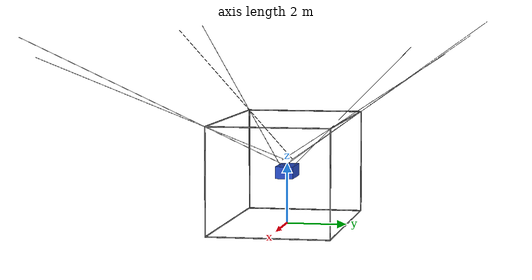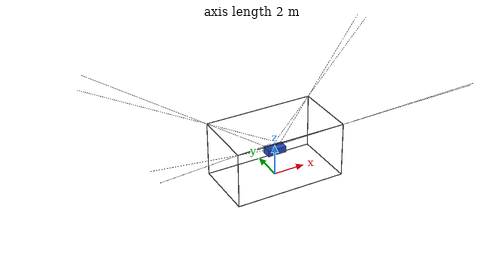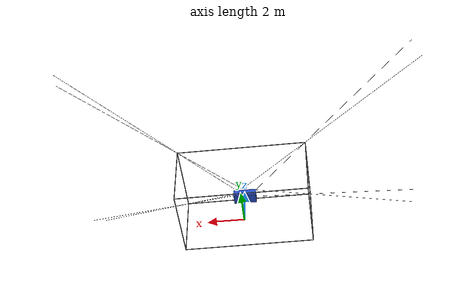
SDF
<?xml version="1.0"?>
<sdf version="1.4">
  <model name="/home/user/catkin_ws/src/cdpr3/sdf/caroca">
    <!--Definition of the robot frame-->
    <link name="frame">
      <pose>0 0 0 0 0 0</pose>
      <inertial>
        <inertia>
          <ixx>50000.0</ixx>
          <ixy>0</ixy>
          <ixz>0</ixz>
          <iyy>50000.0</iyy>
          <iyz>0</iyz>
          <izz>50000.0</izz>
        </inertia>
        <mass>100000</mass>
      </inertial>
      <visual name="visual1">
        <geometry>
          <cylinder>
            <radius>0.02</radius>
            <length>3.5</length>
          </cylinder>
        </geometry>
        <pose>-3.500000 -2.000000 1.750000 0.000000 0.000000 0.000000</pose>
        <material>
          <script>
            <uri>file://media/materials/scripts/kitchen.material</uri>
            <name>Gazebo/Grey</name>
          </script>
        </material>
      </visual>
      <collision name="collision1">
        <geometry>
          <cylinder>
            <radius>0.02</radius>
          </cylinder>
        </geometry>
        <pose>-3.500000 -2.000000 1.750000 0.000000 0.000000 0.000000</pose>
      </collision>
      <visual name="visual2">
        <geometry>
          <cylinder>
            <radius>0.02</radius>
            <length>4.0</length>
          </cylinder>
        </geometry>
        <pose>-3.500000 0.000000 0.000000 1.570796 0.000000 0.000000</pose>
        <material>
          <script>
            <uri>file://media/materials/scripts/kitchen.material</uri>
            <name>Gazebo/Grey</name>
          </script>
        </material>
      </visual>
      <collision name="collision2">
        <geometry>
          <cylinder>
            <radius>0.02</radius>
          </cylinder>
        </geometry>
        <pose>-3.500000 0.000000 0.000000 1.570796 0.000000 0.000000</pose>
      </collision>
      <visual name="visual3">
        <geometry>
          <cylinder>
            <radius>0.02</radius>
            <length>7.0</length>
          </cylinder>
        </geometry>
        <pose>0.000000 -2.000000 0.000000 0.000000 1.570796 0.000000</pose>
        <material>
          <script>
            <uri>file://media/materials/scripts/kitchen.material</uri>
            <name>Gazebo/Grey</name>
          </script>
        </material>
      </visual>
      <collision name="collision3">
        <geometry>
          <cylinder>
            <radius>0.02</radius>
          </cylinder>
        </geometry>
        <pose>0.000000 -2.000000 0.000000 0.000000 1.570796 0.000000</pose>
      </collision>
      <visual name="visual4">
        <geometry>
          <cylinder>
            <radius>0.02</radius>
            <length>4.0</length>
          </cylinder>
        </geometry>
        <pose>-3.500000 0.000000 3.500000 1.570796 0.000000 0.000000</pose>
        <material>
          <script>
            <uri>file://media/materials/scripts/kitchen.material</uri>
            <name>Gazebo/Grey</name>
          </script>
        </material>
      </visual>
      <collision name="collision4">
        <geometry>
          <cylinder>
            <radius>0.02</radius>
          </cylinder>
        </geometry>
        <pose>-3.500000 0.000000 3.500000 1.570796 0.000000 0.000000</pose>
      </collision>
      <visual name="visual5">
        <geometry>
          <cylinder>
            <radius>0.02</radius>
            <length>7.0</length>
          </cylinder>
        </geometry>
        <pose>0.000000 -2.000000 3.500000 0.000000 1.570796 0.000000</pose>
        <material>
          <script>
            <uri>file://media/materials/scripts/kitchen.material</uri>
            <name>Gazebo/Grey</name>
          </script>
        </material>
      </visual>
      <collision name="collision5">
        <geometry>
          <cylinder>
            <radius>0.02</radius>
          </cylinder>
        </geometry>
        <pose>0.000000 -2.000000 3.500000 0.000000 1.570796 0.000000</pose>
      </collision>
      <visual name="visual6">
        <geometry>
          <cylinder>
            <radius>0.02</radius>
            <length>3.5</length>
          </cylinder>
        </geometry>
        <pose>-3.500000 2.000000 1.750000 0.000000 0.000000 0.000000</pose>
        <material>
          <script>
            <uri>file://media/materials/scripts/kitchen.material</uri>
            <name>Gazebo/Grey</name>
          </script>
        </material>
      </visual>
      <collision name="collision6">
        <geometry>
          <cylinder>
            <radius>0.02</radius>
          </cylinder>
        </geometry>
        <pose>-3.500000 2.000000 1.750000 0.000000 0.000000 0.000000</pose>
      </collision>
      <visual name="visual7">
        <geometry>
          <cylinder>
            <radius>0.02</radius>
            <length>7.0</length>
          </cylinder>
        </geometry>
        <pose>0.000000 2.000000 0.000000 0.000000 1.570796 0.000000</pose>
        <material>
          <script>
            <uri>file://media/materials/scripts/kitchen.material</uri>
            <name>Gazebo/Grey</name>
          </script>
        </material>
      </visual>
      <collision name="collision7">
        <geometry>
          <cylinder>
            <radius>0.02</radius>
          </cylinder>
        </geometry>
        <pose>0.000000 2.000000 0.000000 0.000000 1.570796 0.000000</pose>
      </collision>
      <visual name="visual8">
        <geometry>
          <cylinder>
            <radius>0.02</radius>
            <length>7.0</length>
          </cylinder>
        </geometry>
        <pose>0.000000 2.000000 3.500000 0.000000 1.570796 0.000000</pose>
        <material>
          <script>
            <uri>file://media/materials/scripts/kitchen.material</uri>
            <name>Gazebo/Grey</name>
          </script>
        </material>
      </visual>
      <collision name="collision8">
        <geometry>
          <cylinder>
            <radius>0.02</radius>
          </cylinder>
        </geometry>
        <pose>0.000000 2.000000 3.500000 0.000000 1.570796 0.000000</pose>
      </collision>
      <visual name="visual9">
        <geometry>
          <cylinder>
            <radius>0.02</radius>
            <length>3.5</length>
          </cylinder>
        </geometry>
        <pose>3.500000 -2.000000 1.750000 0.000000 0.000000 0.000000</pose>
        <material>
          <script>
            <uri>file://media/materials/scripts/kitchen.material</uri>
            <name>Gazebo/Grey</name>
          </script>
        </material>
      </visual>
      <collision name="collision9">
        <geometry>
          <cylinder>
            <radius>0.02</radius>
          </cylinder>
        </geometry>
        <pose>3.500000 -2.000000 1.750000 0.000000 0.000000 0.000000</pose>
      </collision>
      <visual name="visual10">
        <geometry>
          <cylinder>
            <radius>0.02</radius>
            <length>4.0</length>
          </cylinder>
        </geometry>
        <pose>3.500000 0.000000 0.000000 1.570796 0.000000 0.000000</pose>
        <material>
          <script>
            <uri>file://media/materials/scripts/kitchen.material</uri>
            <name>Gazebo/Grey</name>
          </script>
        </material>
      </visual>
      <collision name="collision10">
        <geometry>
          <cylinder>
            <radius>0.02</radius>
          </cylinder>
        </geometry>
        <pose>3.500000 0.000000 0.000000 1.570796 0.000000 0.000000</pose>
      </collision>
      <visual name="visual11">
        <geometry>
          <cylinder>
            <radius>0.02</radius>
            <length>4.0</length>
          </cylinder>
        </geometry>
        <pose>3.500000 0.000000 3.500000 1.570796 0.000000 0.000000</pose>
        <material>
          <script>
            <uri>file://media/materials/scripts/kitchen.material</uri>
            <name>Gazebo/Grey</name>
          </script>
        </material>
      </visual>
      <collision name="collision11">
        <geometry>
          <cylinder>
            <radius>0.02</radius>
          </cylinder>
        </geometry>
        <pose>3.500000 0.000000 3.500000 1.570796 0.000000 0.000000</pose>
      </collision>
      <visual name="visual12">
        <geometry>
          <cylinder>
            <radius>0.02</radius>
            <length>3.5</length>
          </cylinder>
        </geometry>
        <pose>3.500000 2.000000 1.750000 0.000000 0.000000 0.000000</pose>
        <material>
          <script>
            <uri>file://media/materials/scripts/kitchen.material</uri>
            <name>Gazebo/Grey</name>
          </script>
        </material>
      </visual>
      <collision name="collision12">
        <geometry>
          <cylinder>
            <radius>0.02</radius>
          </cylinder>
        </geometry>
        <pose>3.500000 2.000000 1.750000 0.000000 0.000000 0.000000</pose>
      </collision>
    </link>
    <!--Definition of the robot cables-->
    <!--Definition of the robot platform-->
    <link name="platform">
      <pose>0.000000 0.000000 1.7500000 0.000000 0.000000 0.000000</pose>
      <visual name="visualplatform">
        <geometry>
          <box>
            <size>1.2 0.6 0.4</size>
          </box>
        </geometry>
        <material>
          <script>
            <uri>file://media/materials/scripts/kitchen.material</uri>
            <name>Gazebo/Blue</name>
          </script>
        </material>
      </visual>
      <collision name="collisionplatform">
        <geometry>
          <box>
            <size>1.2 0.6 0.4</size>
          </box>
        </geometry>
      </collision>
      <inertial>
        <inertia>
          <ixx>50.0</ixx>
          <ixy>0</ixy>
          <ixz>0</ixz>
          <iyy>50.0</iyy>
          <iyz>0</iyz>
          <izz>50.0</izz>
        </inertia>
        <mass>100</mass>
      </inertial>
    </link>
    <link name="cable0">
      <pose>-4.945385 2.722693 4.037136 2.209959 1.013652 1.669938</pose>
      <visual name="visual">
        <geometry>
          <cylinder>
            <radius>0.005</radius>
            <length>12.124355653</length>
          </cylinder>
        </geometry>
        <material>
          <script>
            <uri>file://media/materials/scripts/kitchen.material</uri>
            <name>Gazebo/Black</name>
          </script>
        </material>
      </visual>
      <inertial>
        <inertia>
          <ixx>0.005</ixx>
          <ixy>0</ixy>
          <ixz>0</ixz>
          <iyy>0.005</iyy>
          <iyz>0</iyz>
          <izz>0.005</izz>
        </inertia>
        <mass>0.01</mass>
      </inertial>
    </link>
    <link name="virt_X0">
      <inertial>
        <inertia>
          <ixx>0.005</ixx>
          <ixy>0</ixy>
          <ixz>0</ixz>
          <iyy>0.005</iyy>
          <iyz>0</iyz>
          <izz>0.005</izz>
        </inertia>
        <mass>0.01</mass>
      </inertial>
      <pose>-3.500000 2.000000 3.500000 2.209959 1.013652 1.669938</pose>
    </link>
    <joint name="rev_X0" type="revolute">
      <pose>0 0 0 2.209959 1.013652 1.669938</pose>
      <parent>frame</parent>
      <child>virt_X0</child>
      <axis>
        <xyz>-0.052337 0.526168 -0.848768</xyz>
        <limit>
          <effort>6500</effort>
          <velocity>100</velocity>
        </limit>
        <dynamics>
          <damping>1</damping>
        </dynamics>
      </axis>
    </joint>
    <link name="virt_Y0">
      <inertial>
        <inertia>
          <ixx>0.5</ixx>
          <ixy>0</ixy>
          <ixz>0</ixz>
          <iyy>0.5</iyy>
          <iyz>0</iyz>
          <izz>0.5</izz>
        </inertia>
        <mass>1</mass>
      </inertial>
      <pose>-3.500000 2.000000 3.500000 2.209959 1.013652 1.669938</pose>
    </link>
    <joint name="rev_Y0" type="revolute">
      <pose>0 0 0 2.209959 1.013652 1.669938</pose>
      <parent>virt_Y0</parent>
      <child>virt_X0</child>
      <axis>
        <xyz>0.526168 0.736916 0.424384</xyz>
        <limit>
          <effort>6500</effort>
          <velocity>100</velocity>
        </limit>
        <dynamics>
          <damping>1</damping>
        </dynamics>
      </axis>
    </joint>
    <joint name="linear0" type="prismatic">
      <pose>0 0 2.368157 2.209959 1.013652 1.669938</pose>
      <parent>virt_Y0</parent>
      <child>cable0</child>
      <axis>
        <xyz>-0.848768 0.424384 0.315421</xyz>
        <limit>
          <lower>-50</lower>
          <upper>50</upper>
          <effort>6500</effort>
          <velocity>100</velocity>
        </limit>
        <dynamics>
          <damping>1</damping>
        </dynamics>
      </axis>
    </joint>
    <link name="virt_Xpf0">
      <inertial>
        <inertia>
          <ixx>0.5</ixx>
          <ixy>0</ixy>
          <ixz>0</ixz>
          <iyy>0.5</iyy>
          <iyz>0</iyz>
          <izz>0.5</izz>
        </inertia>
        <mass>1</mass>
      </inertial>
      <pose>0.200000 0.150000 2.125000 2.209959 1.013652 1.669938</pose>
    </link>
    <joint name="rev_Xpf0" type="revolute">
      <pose>0 0 0 2.209959 1.013652 1.669938</pose>
      <parent>platform</parent>
      <child>virt_Ypf0</child>
      <axis>
        <xyz>1 0 0</xyz>
        <limit>
          <effort>6500</effort>
          <velocity>100</velocity>
        </limit>
        <dynamics>
          <damping>1</damping>
        </dynamics>
      </axis>
    </joint>
    <link name="virt_Ypf0">
      <inertial>
        <inertia>
          <ixx>0.5</ixx>
          <ixy>0</ixy>
          <ixz>0</ixz>
          <iyy>0.5</iyy>
          <iyz>0</iyz>
          <izz>0.5</izz>
        </inertia>
        <mass>1</mass>
      </inertial>
      <pose>0.200000 0.150000 2.125000 2.209959 1.013652 1.669938</pose>
    </link>
    <joint name="rev_Ypf0" type="revolute">
      <pose>0 0 0 2.209959 1.013652 1.669938</pose>
      <parent>virt_Xpf0</parent>
      <child>virt_Ypf0</child>
      <axis>
        <xyz>0 1 0</xyz>
        <limit>
          <effort>6500</effort>
          <velocity>100</velocity>
        </limit>
        <dynamics>
          <damping>1</damping>
        </dynamics>
      </axis>
    </joint>
    <joint name="rev_Zpf0" type="revolute">
      <pose>0 0 0 2.209959 1.013652 1.669938</pose>
      <child>virt_Ypf0</child>
      <parent>cable0</parent>
      <axis>
        <xyz>0 0 1</xyz>
        <limit>
          <effort>6500</effort>
          <velocity>100</velocity>
        </limit>
        <dynamics>
          <damping>1</damping>
        </dynamics>
      </axis>
    </joint>
    <plugin filename="libcdpr3.so" name="freefloating_gazebo_control"/>
    <link name="cable1">
      <pose>4.846717 2.673358 4.091600 2.291567 -0.983591 -1.738566</pose>
      <visual name="visual">
        <geometry>
          <cylinder>
            <radius>0.005</radius>
            <length>12.124355653</length>
          </cylinder>
        </geometry>
        <material>
          <script>
            <uri>file://media/materials/scripts/kitchen.material</uri>
            <name>Gazebo/Black</name>
          </script>
        </material>
      </visual>
      <inertial>
        <inertia>
          <ixx>0.005</ixx>
          <ixy>0</ixy>
          <ixz>0</ixz>
          <iyy>0.005</iyy>
          <iyz>0</iyz>
          <izz>0.005</izz>
        </inertia>
        <mass>0.01</mass>
      </inertial>
    </link>
    <link name="virt_X1">
      <inertial>
        <inertia>
          <ixx>0.005</ixx>
          <ixy>0</ixy>
          <ixz>0</ixz>
          <iyy>0.005</iyy>
          <iyz>0</iyz>
          <izz>0.005</izz>
        </inertia>
        <mass>0.01</mass>
      </inertial>
      <pose>3.500000 2.000000 3.500100 2.291567 -0.983591 -1.738566</pose>
    </link>
    <joint name="rev_X1" type="revolute">
      <pose>0 0 0 2.291567 -0.983591 -1.738566</pose>
      <parent>frame</parent>
      <child>virt_X1</child>
      <axis>
        <xyz>-0.092515 -0.546258 0.832492</xyz>
        <limit>
          <effort>6500</effort>
          <velocity>100</velocity>
        </limit>
        <dynamics>
          <damping>1</damping>
        </dynamics>
      </axis>
    </joint>
    <link name="virt_Y1">
      <inertial>
        <inertia>
          <ixx>0.5</ixx>
          <ixy>0</ixy>
          <ixz>0</ixz>
          <iyy>0.5</iyy>
          <iyz>0</iyz>
          <izz>0.5</izz>
        </inertia>
        <mass>1</mass>
      </inertial>
      <pose>3.500000 2.000000 3.500100 2.291567 -0.983591 -1.738566</pose>
    </link>
    <joint name="rev_Y1" type="revolute">
      <pose>0 0 0 2.291567 -0.983591 -1.738566</pose>
      <parent>virt_Y1</parent>
      <child>virt_X1</child>
      <axis>
        <xyz>-0.546258 0.726871 0.416246</xyz>
        <limit>
          <effort>6500</effort>
          <velocity>100</velocity>
        </limit>
        <dynamics>
          <damping>1</damping>
        </dynamics>
      </axis>
    </joint>
    <joint name="linear1" type="prismatic">
      <pose>0 0 2.206496 2.291567 -0.983591 -1.738566</pose>
      <parent>virt_Y1</parent>
      <child>cable1</child>
      <axis>
        <xyz>0.832492 0.416246 0.365644</xyz>
        <limit>
          <lower>-50</lower>
          <upper>50</upper>
          <effort>6500</effort>
          <velocity>100</velocity>
        </limit>
        <dynamics>
          <damping>1</damping>
        </dynamics>
      </axis>
    </joint>
    <link name="virt_Xpf1">
      <inertial>
        <inertia>
          <ixx>0.5</ixx>
          <ixy>0</ixy>
          <ixz>0</ixz>
          <iyy>0.5</iyy>
          <iyz>0</iyz>
          <izz>0.5</izz>
        </inertia>
        <mass>1</mass>
      </inertial>
      <pose>-0.200000 0.150000 1.875000 2.291567 -0.983591 -1.738566</pose>
    </link>
    <joint name="rev_Xpf1" type="revolute">
      <pose>0 0 0 2.291567 -0.983591 -1.738566</pose>
      <parent>platform</parent>
      <child>virt_Ypf1</child>
      <axis>
        <xyz>1 0 0</xyz>
        <limit>
          <effort>6500</effort>
          <velocity>100</velocity>
        </limit>
        <dynamics>
          <damping>1</damping>
        </dynamics>
      </axis>
    </joint>
    <link name="virt_Ypf1">
      <inertial>
        <inertia>
          <ixx>0.5</ixx>
          <ixy>0</ixy>
          <ixz>0</ixz>
          <iyy>0.5</iyy>
          <iyz>0</iyz>
          <izz>0.5</izz>
        </inertia>
        <mass>1</mass>
      </inertial>
      <pose>-0.200000 0.150000 1.875000 2.291567 -0.983591 -1.738566</pose>
    </link>
    <joint name="rev_Ypf1" type="revolute">
      <pose>0 0 0 2.291567 -0.983591 -1.738566</pose>
      <parent>virt_Xpf1</parent>
      <child>virt_Ypf1</child>
      <axis>
        <xyz>0 1 0</xyz>
        <limit>
          <effort>6500</effort>
          <velocity>100</velocity>
        </limit>
        <dynamics>
          <damping>1</damping>
        </dynamics>
      </axis>
    </joint>
    <joint name="rev_Zpf1" type="revolute">
      <pose>0 0 0 2.291567 -0.983591 -1.738566</pose>
      <child>virt_Ypf1</child>
      <parent>cable1</parent>
      <axis>
        <xyz>0 0 1</xyz>
        <limit>
          <effort>6500</effort>
          <velocity>100</velocity>
        </limit>
        <dynamics>
          <damping>1</damping>
        </dynamics>
      </axis>
    </joint>
    <plugin filename="libcdpr3.so" name="freefloating_gazebo_control"/>
    <link name="cable2">
      <pose>-4.895339 2.909084 4.187099 2.218008 0.885972 1.522972</pose>
      <visual name="visual">
        <geometry>
          <cylinder>
            <radius>0.005</radius>
            <length>12.124355653</length>
          </cylinder>
        </geometry>
        <material>
          <script>
            <uri>file://media/materials/scripts/kitchen.material</uri>
            <name>Gazebo/Black</name>
          </script>
        </material>
      </visual>
      <inertial>
        <inertia>
          <ixx>0.005</ixx>
          <ixy>0</ixy>
          <ixz>0</ixz>
          <iyy>0.005</iyy>
          <iyz>0</iyz>
          <izz>0.005</izz>
        </inertia>
        <mass>0.01</mass>
      </inertial>
    </link>
    <link name="virt_X2">
      <inertial>
        <inertia>
          <ixx>0.005</ixx>
          <ixy>0</ixy>
          <ixz>0</ixz>
          <iyy>0.005</iyy>
          <iyz>0</iyz>
          <izz>0.005</izz>
        </inertia>
        <mass>0.01</mass>
      </inertial>
      <pose>-3.500000 2.000000 3.500000 2.218008 0.885972 1.522972</pose>
    </link>
    <joint name="rev_X2" type="revolute">
      <pose>0 0 0 2.218008 0.885972 1.522972</pose>
      <parent>frame</parent>
      <child>virt_X2</child>
      <axis>
        <xyz>0.030239 0.631814 -0.774530</xyz>
        <limit>
          <effort>6500</effort>
          <velocity>100</velocity>
        </limit>
        <dynamics>
          <damping>1</damping>
        </dynamics>
      </axis>
    </joint>
    <link name="virt_Y2">
      <inertial>
        <inertia>
          <ixx>0.5</ixx>
          <ixy>0</ixy>
          <ixz>0</ixz>
          <iyy>0.5</iyy>
          <iyz>0</iyz>
          <izz>0.5</izz>
        </inertia>
        <mass>1</mass>
      </inertial>
      <pose>-3.500000 2.000000 3.500000 2.218008 0.885972 1.522972</pose>
    </link>
    <joint name="rev_Y2" type="revolute">
      <pose>0 0 0 2.218008 0.885972 1.522972</pose>
      <parent>virt_Y2</parent>
      <child>virt_X2</child>
      <axis>
        <xyz>0.631814 0.588364 0.504618</xyz>
        <limit>
          <effort>6500</effort>
          <velocity>100</velocity>
        </limit>
        <dynamics>
          <damping>1</damping>
        </dynamics>
      </axis>
    </joint>
    <joint name="linear2" type="prismatic">
      <pose>0 0 2.563270 2.218008 0.885972 1.522972</pose>
      <parent>virt_Y2</parent>
      <child>cable2</child>
      <axis>
        <xyz>-0.774530 0.504618 0.381397</xyz>
        <limit>
          <lower>-50</lower>
          <upper>50</upper>
          <effort>6500</effort>
          <velocity>100</velocity>
        </limit>
        <dynamics>
          <damping>1</damping>
        </dynamics>
      </axis>
    </joint>
    <link name="virt_Xpf2">
      <inertial>
        <inertia>
          <ixx>0.5</ixx>
          <ixy>0</ixy>
          <ixz>0</ixz>
          <iyy>0.5</iyy>
          <iyz>0</iyz>
          <izz>0.5</izz>
        </inertia>
        <mass>1</mass>
      </inertial>
      <pose>-0.200000 -0.150000 1.875000 2.218008 0.885972 1.522972</pose>
    </link>
    <joint name="rev_Xpf2" type="revolute">
      <pose>0 0 0 2.218008 0.885972 1.522972</pose>
      <parent>platform</parent>
      <child>virt_Ypf2</child>
      <axis>
        <xyz>1 0 0</xyz>
        <limit>
          <effort>6500</effort>
          <velocity>100</velocity>
        </limit>
        <dynamics>
          <damping>1</damping>
        </dynamics>
      </axis>
    </joint>
    <link name="virt_Ypf2">
      <inertial>
        <inertia>
          <ixx>0.5</ixx>
          <ixy>0</ixy>
          <ixz>0</ixz>
          <iyy>0.5</iyy>
          <iyz>0</iyz>
          <izz>0.5</izz>
        </inertia>
        <mass>1</mass>
      </inertial>
      <pose>-0.200000 -0.150000 1.875000 2.218008 0.885972 1.522972</pose>
    </link>
    <joint name="rev_Ypf2" type="revolute">
      <pose>0 0 0 2.218008 0.885972 1.522972</pose>
      <parent>virt_Xpf2</parent>
      <child>virt_Ypf2</child>
      <axis>
        <xyz>0 1 0</xyz>
        <limit>
          <effort>6500</effort>
          <velocity>100</velocity>
        </limit>
        <dynamics>
          <damping>1</damping>
        </dynamics>
      </axis>
    </joint>
    <joint name="rev_Zpf2" type="revolute">
      <pose>0 0 0 2.218008 0.885972 1.522972</pose>
      <child>virt_Ypf2</child>
      <parent>cable2</parent>
      <axis>
        <xyz>0 0 1</xyz>
        <limit>
          <effort>6500</effort>
          <velocity>100</velocity>
        </limit>
        <dynamics>
          <damping>1</damping>
        </dynamics>
      </axis>
    </joint>
    <plugin filename="libcdpr3.so" name="freefloating_gazebo_control"/>
    <link name="cable3">
      <pose>4.995408 2.974281 4.123232 2.139812 -0.912503 -1.461739</pose>
      <visual name="visual">
        <geometry>
          <cylinder>
            <radius>0.005</radius>
            <length>12.124355653</length>
          </cylinder>
        </geometry>
        <material>
          <script>
            <uri>file://media/materials/scripts/kitchen.material</uri>
            <name>Gazebo/Black</name>
          </script>
        </material>
      </visual>
      <inertial>
        <inertia>
          <ixx>0.005</ixx>
          <ixy>0</ixy>
          <ixz>0</ixz>
          <iyy>0.005</iyy>
          <iyz>0</iyz>
          <izz>0.005</izz>
        </inertia>
        <mass>0.01</mass>
      </inertial>
    </link>
    <link name="virt_X3">
      <inertial>
        <inertia>
          <ixx>0.005</ixx>
          <ixy>0</ixy>
          <ixz>0</ixz>
          <iyy>0.005</iyy>
          <iyz>0</iyz>
          <izz>0.005</izz>
        </inertia>
        <mass>0.01</mass>
      </inertial>
      <pose>3.500000 2.000000 3.500100 2.139812 -0.912503 -1.461739</pose>
    </link>
    <joint name="rev_X3" type="revolute">
      <pose>0 0 0 2.139812 -0.912503 -1.461739</pose>
      <parent>frame</parent>
      <child>virt_X3</child>
      <axis>
        <xyz>0.066586 -0.608134 0.791037</xyz>
        <limit>
          <effort>6500</effort>
          <velocity>100</velocity>
        </limit>
        <dynamics>
          <damping>1</damping>
        </dynamics>
      </axis>
    </joint>
    <link name="virt_Y3">
      <inertial>
        <inertia>
          <ixx>0.5</ixx>
          <ixy>0</ixy>
          <ixz>0</ixz>
          <iyy>0.5</iyy>
          <iyz>0</iyz>
          <izz>0.5</izz>
        </inertia>
        <mass>1</mass>
      </inertial>
      <pose>3.500000 2.000000 3.500100 2.139812 -0.912503 -1.461739</pose>
    </link>
    <joint name="rev_Y3" type="revolute">
      <pose>0 0 0 2.139812 -0.912503 -1.461739</pose>
      <parent>virt_Y3</parent>
      <child>virt_X3</child>
      <axis>
        <xyz>-0.608134 0.603792 0.515373</xyz>
        <limit>
          <effort>6500</effort>
          <velocity>100</velocity>
        </limit>
        <dynamics>
          <damping>1</damping>
        </dynamics>
      </axis>
    </joint>
    <joint name="linear3" type="prismatic">
      <pose>0 0 2.747100 2.139812 -0.912503 -1.461739</pose>
      <parent>virt_Y3</parent>
      <child>cable3</child>
      <axis>
        <xyz>0.791037 0.515373 0.329623</xyz>
        <limit>
          <lower>-50</lower>
          <upper>50</upper>
          <effort>6500</effort>
          <velocity>100</velocity>
        </limit>
        <dynamics>
          <damping>1</damping>
        </dynamics>
      </axis>
    </joint>
    <link name="virt_Xpf3">
      <inertial>
        <inertia>
          <ixx>0.5</ixx>
          <ixy>0</ixy>
          <ixz>0</ixz>
          <iyy>0.5</iyy>
          <iyz>0</iyz>
          <izz>0.5</izz>
        </inertia>
        <mass>1</mass>
      </inertial>
      <pose>0.200000 -0.150000 2.125000 2.139812 -0.912503 -1.461739</pose>
    </link>
    <joint name="rev_Xpf3" type="revolute">
      <pose>0 0 0 2.139812 -0.912503 -1.461739</pose>
      <parent>platform</parent>
      <child>virt_Ypf3</child>
      <axis>
        <xyz>1 0 0</xyz>
        <limit>
          <effort>6500</effort>
          <velocity>100</velocity>
        </limit>
        <dynamics>
          <damping>1</damping>
        </dynamics>
      </axis>
    </joint>
    <link name="virt_Ypf3">
      <inertial>
        <inertia>
          <ixx>0.5</ixx>
          <ixy>0</ixy>
          <ixz>0</ixz>
          <iyy>0.5</iyy>
          <iyz>0</iyz>
          <izz>0.5</izz>
        </inertia>
        <mass>1</mass>
      </inertial>
      <pose>0.200000 -0.150000 2.125000 2.139812 -0.912503 -1.461739</pose>
    </link>
    <joint name="rev_Ypf3" type="revolute">
      <pose>0 0 0 2.139812 -0.912503 -1.461739</pose>
      <parent>virt_Xpf3</parent>
      <child>virt_Ypf3</child>
      <axis>
        <xyz>0 1 0</xyz>
        <limit>
          <effort>6500</effort>
          <velocity>100</velocity>
        </limit>
        <dynamics>
          <damping>1</damping>
        </dynamics>
      </axis>
    </joint>
    <joint name="rev_Zpf3" type="revolute">
      <pose>0 0 0 2.139812 -0.912503 -1.461739</pose>
      <child>virt_Ypf3</child>
      <parent>cable3</parent>
      <axis>
        <xyz>0 0 1</xyz>
        <limit>
          <effort>6500</effort>
          <velocity>100</velocity>
        </limit>
        <dynamics>
          <damping>1</damping>
        </dynamics>
      </axis>
    </joint>
    <plugin filename="libcdpr3.so" name="freefloating_gazebo_control"/>
    <link name="cable4">
      <pose>-4.995446 -2.974306 4.123102 -2.139779 0.912513 -1.461713</pose>
      <visual name="visual">
        <geometry>
          <cylinder>
            <radius>0.005</radius>
            <length>12.124355653</length>
          </cylinder>
        </geometry>
        <material>
          <script>
            <uri>file://media/materials/scripts/kitchen.material</uri>
            <name>Gazebo/Black</name>
          </script>
        </material>
      </visual>
      <inertial>
        <inertia>
          <ixx>0.005</ixx>
          <ixy>0</ixy>
          <ixz>0</ixz>
          <iyy>0.005</iyy>
          <iyz>0</iyz>
          <izz>0.005</izz>
        </inertia>
        <mass>0.01</mass>
      </inertial>
    </link>
    <link name="virt_X4">
      <inertial>
        <inertia>
          <ixx>0.005</ixx>
          <ixy>0</ixy>
          <ixz>0</ixz>
          <iyy>0.005</iyy>
          <iyz>0</iyz>
          <izz>0.005</izz>
        </inertia>
        <mass>0.01</mass>
      </inertial>
      <pose>-3.500000 -2.000000 3.500000 -2.139779 0.912513 -1.461713</pose>
    </link>
    <joint name="rev_X4" type="revolute">
      <pose>0 0 0 -2.139779 0.912513 -1.461713</pose>
      <parent>frame</parent>
      <child>virt_X4</child>
      <axis>
        <xyz>0.066601 -0.608124 -0.791043</xyz>
        <limit>
          <effort>6500</effort>
          <velocity>100</velocity>
        </limit>
        <dynamics>
          <damping>1</damping>
        </dynamics>
      </axis>
    </joint>
    <link name="virt_Y4">
      <inertial>
        <inertia>
          <ixx>0.5</ixx>
          <ixy>0</ixy>
          <ixz>0</ixz>
          <iyy>0.5</iyy>
          <iyz>0</iyz>
          <izz>0.5</izz>
        </inertia>
        <mass>1</mass>
      </inertial>
      <pose>-3.500000 -2.000000 3.500000 -2.139779 0.912513 -1.461713</pose>
    </link>
    <joint name="rev_Y4" type="revolute">
      <pose>0 0 0 -2.139779 0.912513 -1.461713</pose>
      <parent>virt_Y4</parent>
      <child>virt_X4</child>
      <axis>
        <xyz>-0.608124 0.603798 -0.515377</xyz>
        <limit>
          <effort>6500</effort>
          <velocity>100</velocity>
        </limit>
        <dynamics>
          <damping>1</damping>
        </dynamics>
      </axis>
    </joint>
    <joint name="linear4" type="prismatic">
      <pose>0 0 2.747169 -2.139779 0.912513 -1.461713</pose>
      <parent>virt_Y4</parent>
      <child>cable4</child>
      <axis>
        <xyz>-0.791043 -0.515377 0.329601</xyz>
        <limit>
          <lower>-50</lower>
          <upper>50</upper>
          <effort>6500</effort>
          <velocity>100</velocity>
        </limit>
        <dynamics>
          <damping>1</damping>
        </dynamics>
      </axis>
    </joint>
    <link name="virt_Xpf4">
      <inertial>
        <inertia>
          <ixx>0.5</ixx>
          <ixy>0</ixy>
          <ixz>0</ixz>
          <iyy>0.5</iyy>
          <iyz>0</iyz>
          <izz>0.5</izz>
        </inertia>
        <mass>1</mass>
      </inertial>
      <pose>-0.200000 0.150000 2.125000 -2.139779 0.912513 -1.461713</pose>
    </link>
    <joint name="rev_Xpf4" type="revolute">
      <pose>0 0 0 -2.139779 0.912513 -1.461713</pose>
      <parent>platform</parent>
      <child>virt_Ypf4</child>
      <axis>
        <xyz>1 0 0</xyz>
        <limit>
          <effort>6500</effort>
          <velocity>100</velocity>
        </limit>
        <dynamics>
          <damping>1</damping>
        </dynamics>
      </axis>
    </joint>
    <link name="virt_Ypf4">
      <inertial>
        <inertia>
          <ixx>0.5</ixx>
          <ixy>0</ixy>
          <ixz>0</ixz>
          <iyy>0.5</iyy>
          <iyz>0</iyz>
          <izz>0.5</izz>
        </inertia>
        <mass>1</mass>
      </inertial>
      <pose>-0.200000 0.150000 2.125000 -2.139779 0.912513 -1.461713</pose>
    </link>
    <joint name="rev_Ypf4" type="revolute">
      <pose>0 0 0 -2.139779 0.912513 -1.461713</pose>
      <parent>virt_Xpf4</parent>
      <child>virt_Ypf4</child>
      <axis>
        <xyz>0 1 0</xyz>
        <limit>
          <effort>6500</effort>
          <velocity>100</velocity>
        </limit>
        <dynamics>
          <damping>1</damping>
        </dynamics>
      </axis>
    </joint>
    <joint name="rev_Zpf4" type="revolute">
      <pose>0 0 0 -2.139779 0.912513 -1.461713</pose>
      <child>virt_Ypf4</child>
      <parent>cable4</parent>
      <axis>
        <xyz>0 0 1</xyz>
        <limit>
          <effort>6500</effort>
          <velocity>100</velocity>
        </limit>
        <dynamics>
          <damping>1</damping>
        </dynamics>
      </axis>
    </joint>
    <plugin filename="libcdpr3.so" name="freefloating_gazebo_control"/>
    <link name="cable5">
      <pose>4.895297 -2.909057 4.187220 -2.218038 -0.885961 1.522995</pose>
      <visual name="visual">
        <geometry>
          <cylinder>
            <radius>0.005</radius>
            <length>12.124355653</length>
          </cylinder>
        </geometry>
        <material>
          <script>
            <uri>file://media/materials/scripts/kitchen.material</uri>
            <name>Gazebo/Black</name>
          </script>
        </material>
      </visual>
      <inertial>
        <inertia>
          <ixx>0.005</ixx>
          <ixy>0</ixy>
          <ixz>0</ixz>
          <iyy>0.005</iyy>
          <iyz>0</iyz>
          <izz>0.005</izz>
        </inertia>
        <mass>0.01</mass>
      </inertial>
    </link>
    <link name="virt_X5">
      <inertial>
        <inertia>
          <ixx>0.005</ixx>
          <ixy>0</ixy>
          <ixz>0</ixz>
          <iyy>0.005</iyy>
          <iyz>0</iyz>
          <izz>0.005</izz>
        </inertia>
        <mass>0.01</mass>
      </inertial>
      <pose>3.500000 -2.000000 3.500100 -2.218038 -0.885961 1.522995</pose>
    </link>
    <joint name="rev_X5" type="revolute">
      <pose>0 0 0 -2.218038 -0.885961 1.522995</pose>
      <parent>frame</parent>
      <child>virt_X5</child>
      <axis>
        <xyz>0.030225 0.631823 0.774523</xyz>
        <limit>
          <effort>6500</effort>
          <velocity>100</velocity>
        </limit>
        <dynamics>
          <damping>1</damping>
        </dynamics>
      </axis>
    </joint>
    <link name="virt_Y5">
      <inertial>
        <inertia>
          <ixx>0.5</ixx>
          <ixy>0</ixy>
          <ixz>0</ixz>
          <iyy>0.5</iyy>
          <iyz>0</iyz>
          <izz>0.5</izz>
        </inertia>
        <mass>1</mass>
      </inertial>
      <pose>3.500000 -2.000000 3.500100 -2.218038 -0.885961 1.522995</pose>
    </link>
    <joint name="rev_Y5" type="revolute">
      <pose>0 0 0 -2.218038 -0.885961 1.522995</pose>
      <parent>virt_Y5</parent>
      <child>virt_X5</child>
      <axis>
        <xyz>0.631823 0.588358 -0.504614</xyz>
        <limit>
          <effort>6500</effort>
          <velocity>100</velocity>
        </limit>
        <dynamics>
          <damping>1</damping>
        </dynamics>
      </axis>
    </joint>
    <joint name="linear5" type="prismatic">
      <pose>0 0 2.563193 -2.218038 -0.885961 1.522995</pose>
      <parent>virt_Y5</parent>
      <child>cable5</child>
      <axis>
        <xyz>0.774523 -0.504614 0.381417</xyz>
        <limit>
          <lower>-50</lower>
          <upper>50</upper>
          <effort>6500</effort>
          <velocity>100</velocity>
        </limit>
        <dynamics>
          <damping>1</damping>
        </dynamics>
      </axis>
    </joint>
    <link name="virt_Xpf5">
      <inertial>
        <inertia>
          <ixx>0.5</ixx>
          <ixy>0</ixy>
          <ixz>0</ixz>
          <iyy>0.5</iyy>
          <iyz>0</iyz>
          <izz>0.5</izz>
        </inertia>
        <mass>1</mass>
      </inertial>
      <pose>0.200000 0.150000 1.875000 -2.218038 -0.885961 1.522995</pose>
    </link>
    <joint name="rev_Xpf5" type="revolute">
      <pose>0 0 0 -2.218038 -0.885961 1.522995</pose>
      <parent>platform</parent>
      <child>virt_Ypf5</child>
      <axis>
        <xyz>1 0 0</xyz>
        <limit>
          <effort>6500</effort>
          <velocity>100</velocity>
        </limit>
        <dynamics>
          <damping>1</damping>
        </dynamics>
      </axis>
    </joint>
    <link name="virt_Ypf5">
      <inertial>
        <inertia>
          <ixx>0.5</ixx>
          <ixy>0</ixy>
          <ixz>0</ixz>
          <iyy>0.5</iyy>
          <iyz>0</iyz>
          <izz>0.5</izz>
        </inertia>
        <mass>1</mass>
      </inertial>
      <pose>0.200000 0.150000 1.875000 -2.218038 -0.885961 1.522995</pose>
    </link>
    <joint name="rev_Ypf5" type="revolute">
      <pose>0 0 0 -2.218038 -0.885961 1.522995</pose>
      <parent>virt_Xpf5</parent>
      <child>virt_Ypf5</child>
      <axis>
        <xyz>0 1 0</xyz>
        <limit>
          <effort>6500</effort>
          <velocity>100</velocity>
        </limit>
        <dynamics>
          <damping>1</damping>
        </dynamics>
      </axis>
    </joint>
    <joint name="rev_Zpf5" type="revolute">
      <pose>0 0 0 -2.218038 -0.885961 1.522995</pose>
      <child>virt_Ypf5</child>
      <parent>cable5</parent>
      <axis>
        <xyz>0 0 1</xyz>
        <limit>
          <effort>6500</effort>
          <velocity>100</velocity>
        </limit>
        <dynamics>
          <damping>1</damping>
        </dynamics>
      </axis>
    </joint>
    <plugin filename="libcdpr3.so" name="freefloating_gazebo_control"/>
    <link name="cable6">
      <pose>-4.846758 -2.673379 4.091482 -2.291537 0.983603 -1.738541</pose>
      <visual name="visual">
        <geometry>
          <cylinder>
            <radius>0.005</radius>
            <length>12.124355653</length>
          </cylinder>
        </geometry>
        <material>
          <script>
            <uri>file://media/materials/scripts/kitchen.material</uri>
            <name>Gazebo/Black</name>
          </script>
        </material>
      </visual>
      <inertial>
        <inertia>
          <ixx>0.005</ixx>
          <ixy>0</ixy>
          <ixz>0</ixz>
          <iyy>0.005</iyy>
          <iyz>0</iyz>
          <izz>0.005</izz>
        </inertia>
        <mass>0.01</mass>
      </inertial>
    </link>
    <link name="virt_X6">
      <inertial>
        <inertia>
          <ixx>0.005</ixx>
          <ixy>0</ixy>
          <ixz>0</ixz>
          <iyy>0.005</iyy>
          <iyz>0</iyz>
          <izz>0.005</izz>
        </inertia>
        <mass>0.01</mass>
      </inertial>
      <pose>-3.500000 -2.000000 3.500000 -2.291537 0.983603 -1.738541</pose>
    </link>
    <joint name="rev_X6" type="revolute">
      <pose>0 0 0 -2.291537 0.983603 -1.738541</pose>
      <parent>frame</parent>
      <child>virt_X6</child>
      <axis>
        <xyz>-0.092500 -0.546250 -0.832499</xyz>
        <limit>
          <effort>6500</effort>
          <velocity>100</velocity>
        </limit>
        <dynamics>
          <damping>1</damping>
        </dynamics>
      </axis>
    </joint>
    <link name="virt_Y6">
      <inertial>
        <inertia>
          <ixx>0.5</ixx>
          <ixy>0</ixy>
          <ixz>0</ixz>
          <iyy>0.5</iyy>
          <iyz>0</iyz>
          <izz>0.5</izz>
        </inertia>
        <mass>1</mass>
      </inertial>
      <pose>-3.500000 -2.000000 3.500000 -2.291537 0.983603 -1.738541</pose>
    </link>
    <joint name="rev_Y6" type="revolute">
      <pose>0 0 0 -2.291537 0.983603 -1.738541</pose>
      <parent>virt_Y6</parent>
      <child>virt_X6</child>
      <axis>
        <xyz>-0.546250 0.726875 -0.416250</xyz>
        <limit>
          <effort>6500</effort>
          <velocity>100</velocity>
        </limit>
        <dynamics>
          <damping>1</damping>
        </dynamics>
      </axis>
    </joint>
    <joint name="linear6" type="prismatic">
      <pose>0 0 2.206564 -2.291537 0.983603 -1.738541</pose>
      <parent>virt_Y6</parent>
      <child>cable6</child>
      <axis>
        <xyz>-0.832499 -0.416250 0.365625</xyz>
        <limit>
          <lower>-50</lower>
          <upper>50</upper>
          <effort>6500</effort>
          <velocity>100</velocity>
        </limit>
        <dynamics>
          <damping>1</damping>
        </dynamics>
      </axis>
    </joint>
    <link name="virt_Xpf6">
      <inertial>
        <inertia>
          <ixx>0.5</ixx>
          <ixy>0</ixy>
          <ixz>0</ixz>
          <iyy>0.5</iyy>
          <iyz>0</iyz>
          <izz>0.5</izz>
        </inertia>
        <mass>1</mass>
      </inertial>
      <pose>0.200000 -0.150000 1.875000 -2.291537 0.983603 -1.738541</pose>
    </link>
    <joint name="rev_Xpf6" type="revolute">
      <pose>0 0 0 -2.291537 0.983603 -1.738541</pose>
      <parent>platform</parent>
      <child>virt_Ypf6</child>
      <axis>
        <xyz>1 0 0</xyz>
        <limit>
          <effort>6500</effort>
          <velocity>100</velocity>
        </limit>
        <dynamics>
          <damping>1</damping>
        </dynamics>
      </axis>
    </joint>
    <link name="virt_Ypf6">
      <inertial>
        <inertia>
          <ixx>0.5</ixx>
          <ixy>0</ixy>
          <ixz>0</ixz>
          <iyy>0.5</iyy>
          <iyz>0</iyz>
          <izz>0.5</izz>
        </inertia>
        <mass>1</mass>
      </inertial>
      <pose>0.200000 -0.150000 1.875000 -2.291537 0.983603 -1.738541</pose>
    </link>
    <joint name="rev_Ypf6" type="revolute">
      <pose>0 0 0 -2.291537 0.983603 -1.738541</pose>
      <parent>virt_Xpf6</parent>
      <child>virt_Ypf6</child>
      <axis>
        <xyz>0 1 0</xyz>
        <limit>
          <effort>6500</effort>
          <velocity>100</velocity>
        </limit>
        <dynamics>
          <damping>1</damping>
        </dynamics>
      </axis>
    </joint>
    <joint name="rev_Zpf6" type="revolute">
      <pose>0 0 0 -2.291537 0.983603 -1.738541</pose>
      <child>virt_Ypf6</child>
      <parent>cable6</parent>
      <axis>
        <xyz>0 0 1</xyz>
        <limit>
          <effort>6500</effort>
          <velocity>100</velocity>
        </limit>
        <dynamics>
          <damping>1</damping>
        </dynamics>
      </axis>
    </joint>
    <plugin filename="libcdpr3.so" name="freefloating_gazebo_control"/>
    <link name="cable7">
      <pose>4.945348 -2.722674 4.037262 -2.209994 -1.013640 1.669967</pose>
      <visual name="visual">
        <geometry>
          <cylinder>
            <radius>0.005</radius>
            <length>12.124355653</length>
          </cylinder>
        </geometry>
        <material>
          <script>
            <uri>file://media/materials/scripts/kitchen.material</uri>
            <name>Gazebo/Black</name>
          </script>
        </material>
      </visual>
      <inertial>
        <inertia>
          <ixx>0.005</ixx>
          <ixy>0</ixy>
          <ixz>0</ixz>
          <iyy>0.005</iyy>
          <iyz>0</iyz>
          <izz>0.005</izz>
        </inertia>
        <mass>0.01</mass>
      </inertial>
    </link>
    <link name="virt_X7">
      <inertial>
        <inertia>
          <ixx>0.005</ixx>
          <ixy>0</ixy>
          <ixz>0</ixz>
          <iyy>0.005</iyy>
          <iyz>0</iyz>
          <izz>0.005</izz>
        </inertia>
        <mass>0.01</mass>
      </inertial>
      <pose>3.500000 -2.000000 3.500100 -2.209994 -1.013640 1.669967</pose>
    </link>
    <joint name="rev_X7" type="revolute">
      <pose>0 0 0 -2.209994 -1.013640 1.669967</pose>
      <parent>frame</parent>
      <child>virt_X7</child>
      <axis>
        <xyz>-0.052353 0.526177 0.848762</xyz>
        <limit>
          <effort>6500</effort>
          <velocity>100</velocity>
        </limit>
        <dynamics>
          <damping>1</damping>
        </dynamics>
      </axis>
    </joint>
    <link name="virt_Y7">
      <inertial>
        <inertia>
          <ixx>0.5</ixx>
          <ixy>0</ixy>
          <ixz>0</ixz>
          <iyy>0.5</iyy>
          <iyz>0</iyz>
          <izz>0.5</izz>
        </inertia>
        <mass>1</mass>
      </inertial>
      <pose>3.500000 -2.000000 3.500100 -2.209994 -1.013640 1.669967</pose>
    </link>
    <joint name="rev_Y7" type="revolute">
      <pose>0 0 0 -2.209994 -1.013640 1.669967</pose>
      <parent>virt_Y7</parent>
      <child>virt_X7</child>
      <axis>
        <xyz>0.526177 0.736912 -0.424381</xyz>
        <limit>
          <effort>6500</effort>
          <velocity>100</velocity>
        </limit>
        <dynamics>
          <damping>1</damping>
        </dynamics>
      </axis>
    </joint>
    <joint name="linear7" type="prismatic">
      <pose>0 0 2.368096 -2.209994 -1.013640 1.669967</pose>
      <parent>virt_Y7</parent>
      <child>cable7</child>
      <axis>
        <xyz>0.848762 -0.424381 0.315441</xyz>
        <limit>
          <lower>-50</lower>
          <upper>50</upper>
          <effort>6500</effort>
          <velocity>100</velocity>
        </limit>
        <dynamics>
          <damping>1</damping>
        </dynamics>
      </axis>
    </joint>
    <link name="virt_Xpf7">
      <inertial>
        <inertia>
          <ixx>0.5</ixx>
          <ixy>0</ixy>
          <ixz>0</ixz>
          <iyy>0.5</iyy>
          <iyz>0</iyz>
          <izz>0.5</izz>
        </inertia>
        <mass>1</mass>
      </inertial>
      <pose>-0.200000 -0.150000 2.125000 -2.209994 -1.013640 1.669967</pose>
    </link>
    <joint name="rev_Xpf7" type="revolute">
      <pose>0 0 0 -2.209994 -1.013640 1.669967</pose>
      <parent>platform</parent>
      <child>virt_Ypf7</child>
      <axis>
        <xyz>1 0 0</xyz>
        <limit>
          <effort>6500</effort>
          <velocity>100</velocity>
        </limit>
        <dynamics>
          <damping>1</damping>
        </dynamics>
      </axis>
    </joint>
    <link name="virt_Ypf7">
      <inertial>
        <inertia>
          <ixx>0.5</ixx>
          <ixy>0</ixy>
          <ixz>0</ixz>
          <iyy>0.5</iyy>
          <iyz>0</iyz>
          <izz>0.5</izz>
        </inertia>
        <mass>1</mass>
      </inertial>
      <pose>-0.200000 -0.150000 2.125000 -2.209994 -1.013640 1.669967</pose>
    </link>
    <joint name="rev_Ypf7" type="revolute">
      <pose>0 0 0 -2.209994 -1.013640 1.669967</pose>
      <parent>virt_Xpf7</parent>
      <child>virt_Ypf7</child>
      <axis>
        <xyz>0 1 0</xyz>
        <limit>
          <effort>6500</effort>
          <velocity>100</velocity>
        </limit>
        <dynamics>
          <damping>1</damping>
        </dynamics>
      </axis>
    </joint>
    <joint name="rev_Zpf7" type="revolute">
      <pose>0 0 0 -2.209994 -1.013640 1.669967</pose>
      <child>virt_Ypf7</child>
      <parent>cable7</parent>
      <axis>
        <xyz>0 0 1</xyz>
        <limit>
          <effort>6500</effort>
          <velocity>100</velocity>
        </limit>
        <dynamics>
          <damping>1</damping>
        </dynamics>
      </axis>
    </joint>
    <plugin filename="libcdpr3.so" name="freefloating_gazebo_control"/>
  </model>
</sdf>
